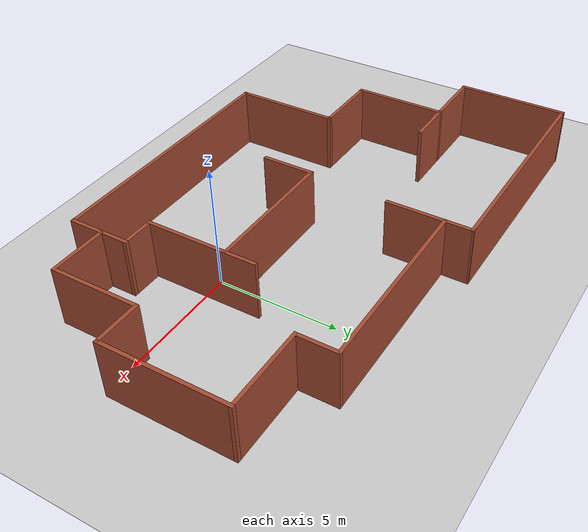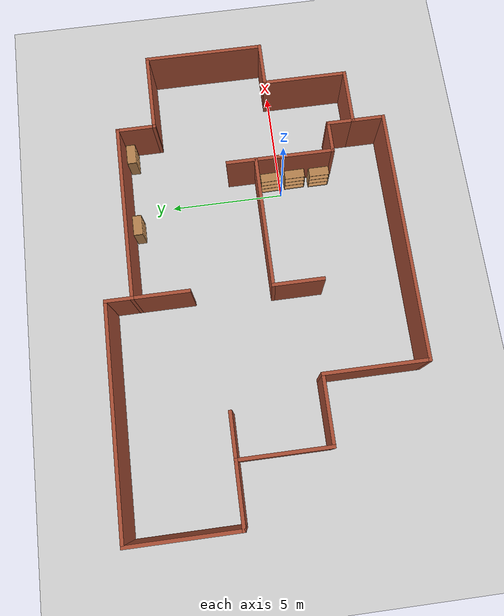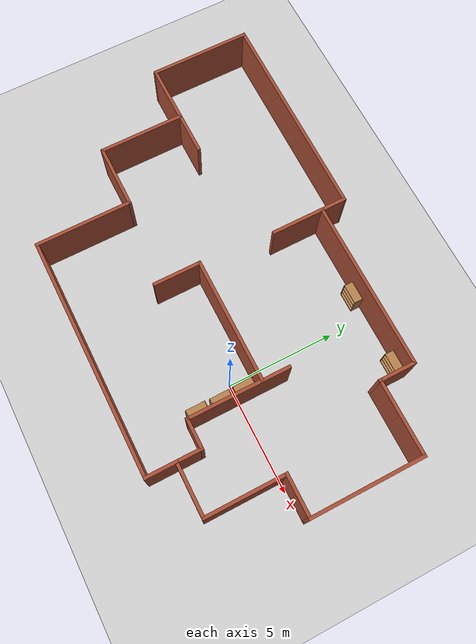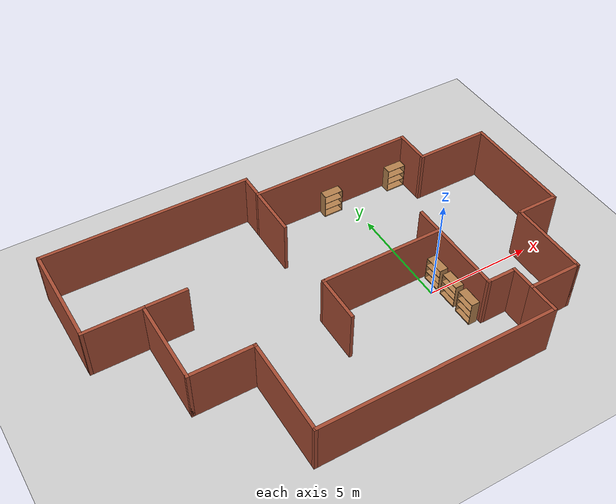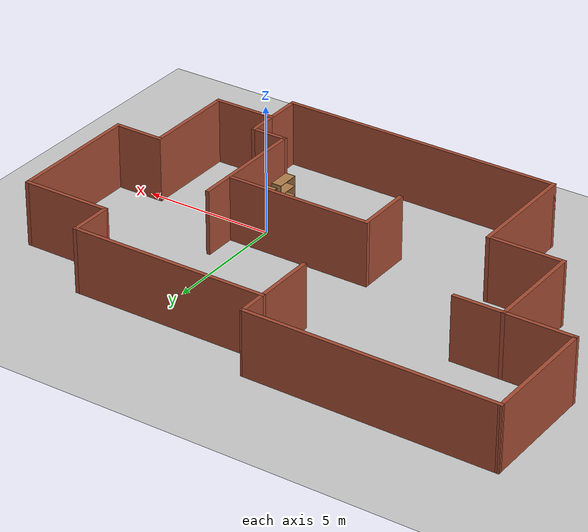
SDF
<sdf version="1.7">
 <world name="default">
  <light name="sun" type="directional">
   <pose>0 0 10 0 -0 0</pose>
   <diffuse>0.8 0.8 0.8 1</diffuse>
   <specular>0.2 0.2 0.2 1</specular>
   <attenuation>
    <range>1000</range>
    <constant>0.9</constant>
    <linear>0.01</linear>
    <quadratic>0.001</quadratic>
   </attenuation>
   <direction>-0.5 0.1 -0.9</direction>
   <spot><inner_angle>0</inner_angle><outer_angle>0</outer_angle><falloff>0</falloff></spot>
  </light>
  <model name="ground_plane">
   <static>1</static>
   <link name="link">
    <collision name="collision">
     <geometry><plane><normal>0 0 1</normal><size>100 100</size></plane></geometry>
     <surface>
      <contact><collide_bitmask>65535</collide_bitmask></contact>
      <friction><ode><mu>100</mu><mu2>50</mu2></ode></friction>
     </surface>
    </collision>
    <visual name="visual">
     <cast_shadows>0</cast_shadows>
     <geometry><plane><normal>0 0 1</normal><size>100 100</size></plane></geometry>
     <material>
      <script><uri>file://media/materials/scripts/gazebo.material</uri><name>Gazebo/Grey</name></script>
     </material>
    </visual>
   </link>
  </model>
  <gravity>0 0 -9.8</gravity>
  <magnetic_field>6e-06 2.3e-05 -4.2e-05</magnetic_field>
  <atmosphere type="adiabatic"/>
  <physics type="ode">
   <max_step_size>0.001</max_step_size>
   <real_time_factor>1</real_time_factor>
   <real_time_update_rate>1000</real_time_update_rate>
  </physics>
  <scene><ambient>0.4 0.4 0.4 1</ambient><background>0.7 0.7 0.7 1</background><shadows>1</shadows></scene>
  <spherical_coordinates>
   <surface_model>EARTH_WGS84</surface_model>
   <latitude_deg>0</latitude_deg>
   <longitude_deg>0</longitude_deg>
   <elevation>0</elevation>
   <heading_deg>0</heading_deg>
  </spherical_coordinates>
  <model name="Untitled">
   <pose>-3.91306 1.61454 0 0 -0 0</pose>
   <link name="Wall_1">
    <collision name="Wall_1_Collision">
     <geometry><box><size>1.5 0.15 2.5</size></box></geometry>
     <pose>0 0 1.25 0 -0 0</pose>
    </collision>
    <visual name="Wall_1_Visual">
     <pose>0 0 1.25 0 -0 0</pose>
     <geometry><box><size>1.5 0.15 2.5</size></box></geometry>
     <material>
      <script><uri>file://media/materials/scripts/gazebo.material</uri><name>Gazebo/Bricks</name></script>
      <ambient>1 1 1 1</ambient>
     </material>
     <meta><layer>0</layer></meta>
    </visual>
    <pose>6.0502 -5.7252 0 0 -0 1.5708</pose>
   </link>
   <link name="Wall_14">
    <collision name="Wall_14_Collision">
     <geometry><box><size>4.75 0.15 2.5</size></box></geometry>
     <pose>0 0 1.25 0 -0 0</pose>
    </collision>
    <visual name="Wall_14_Visual">
     <pose>0 0 1.25 0 -0 0</pose>
     <geometry><box><size>4.75 0.15 2.5</size></box></geometry>
     <material>
      <script><uri>file://media/materials/scripts/gazebo.material</uri><name>Gazebo/Bricks</name></script>
      <ambient>1 1 1 1</ambient>
     </material>
     <meta><layer>0</layer></meta>
    </visual>
    <pose>4.7534 -1.6502 0 0 -0 1.5708</pose>
   </link>
   <link name="Wall_2">
    <collision name="Wall_2_Collision">
     <geometry><box><size>2.5 0.15 2.5</size></box></geometry>
     <pose>0 0 1.25 0 -0 0</pose>
    </collision>
    <visual name="Wall_2_Visual">
     <pose>0 0 1.25 0 -0 0</pose>
     <geometry><box><size>2.5 0.15 2.5</size></box></geometry>
     <material>
      <script><uri>file://media/materials/scripts/gazebo.material</uri><name>Gazebo/Bricks</name></script>
      <ambient>1 1 1 1</ambient>
     </material>
     <meta><layer>0</layer></meta>
    </visual>
    <pose>7.2252 -5.0502 0 0 -0 0</pose>
   </link>
   <link name="Wall_20">
    <collision name="Wall_20_Collision">
     <geometry><box><size>5.25 0.15 2.5</size></box></geometry>
     <pose>0 0 1.25 0 -0 0</pose>
    </collision>
    <visual name="Wall_20_Visual">
     <pose>0 0 1.25 0 -0 0</pose>
     <geometry><box><size>5.25 0.15 2.5</size></box></geometry>
     <material>
      <script><uri>file://media/materials/scripts/gazebo.material</uri><name>Gazebo/Bricks</name></script>
      <ambient>1 1 1 1</ambient>
     </material>
     <meta><layer>0</layer></meta>
    </visual>
    <pose>10.2502 1.0998 0 0 -0 1.5708</pose>
   </link>
   <link name="Wall_21">
    <collision name="Wall_21_Collision">
     <geometry><box><size>3.5 0.15 2.5</size></box></geometry>
     <pose>0 0 1.25 0 -0 0</pose>
    </collision>
    <visual name="Wall_21_Visual">
     <pose>0 0 1.25 0 -0 0</pose>
     <geometry><box><size>3.5 0.15 2.5</size></box></geometry>
     <material>
      <script><uri>file://media/materials/scripts/gazebo.material</uri><name>Gazebo/Bricks</name></script>
      <ambient>1 1 1 1</ambient>
     </material>
     <meta><layer>0</layer></meta>
    </visual>
    <pose>8.5752 3.6498 0 0 -0 3.14159</pose>
   </link>
   <link name="Wall_22">
    <collision name="Wall_22_Collision">
     <geometry><box><size>1.75 0.15 2.5</size></box></geometry>
     <pose>0 0 1.25 0 -0 0</pose>
    </collision>
    <visual name="Wall_22_Visual">
     <pose>0 0 1.25 0 -0 0</pose>
     <geometry><box><size>1.75 0.15 2.5</size></box></geometry>
     <material>
      <script><uri>file://media/materials/scripts/gazebo.material</uri><name>Gazebo/Bricks</name></script>
      <ambient>1 1 1 1</ambient>
     </material>
     <meta><layer>0</layer></meta>
    </visual>
    <pose>6.9002 4.4498 0 0 -0 1.5708</pose>
   </link>
   <link name="Wall_23">
    <collision name="Wall_23_Collision">
     <geometry><box><size>7.75 0.15 2.5</size></box></geometry>
     <pose>0 0 1.25 0 -0 0</pose>
    </collision>
    <visual name="Wall_23_Visual">
     <pose>0 0 1.25 0 -0 0</pose>
     <geometry><box><size>7.75 0.15 2.5</size></box></geometry>
     <material>
      <script><uri>file://media/materials/scripts/gazebo.material</uri><name>Gazebo/Bricks</name></script>
      <ambient>1 1 1 1</ambient>
     </material>
     <meta><layer>0</layer></meta>
    </visual>
    <pose>3.10019 5.2498 0 0 -0 3.14159</pose>
   </link>
   <link name="Wall_25">
    <collision name="Wall_25_Collision">
     <geometry><box><size>1.25 0.15 2.5</size></box></geometry>
     <pose>0 0 1.25 0 -0 0</pose>
    </collision>
    <visual name="Wall_25_Visual">
     <pose>0 0 1.25 0 -0 0</pose>
     <geometry><box><size>1.25 0.15 2.5</size></box></geometry>
     <material>
      <script><uri>file://media/materials/scripts/gazebo.material</uri><name>Gazebo/Bricks</name></script>
      <ambient>1 1 1 1</ambient>
     </material>
     <meta><layer>0</layer></meta>
    </visual>
    <pose>-0.699805 5.7998 0 0 -0 1.5708</pose>
   </link>
   <link name="Wall_3">
    <collision name="Wall_3_Collision">
     <geometry><box><size>3.75 0.15 2.5</size></box></geometry>
     <pose>0 0 1.25 0 -0 0</pose>
    </collision>
    <visual name="Wall_3_Visual">
     <pose>0 0 1.25 0 -0 0</pose>
     <geometry><box><size>3.75 0.15 2.5</size></box></geometry>
     <material>
      <script><uri>file://media/materials/scripts/gazebo.material</uri><name>Gazebo/Bricks</name></script>
      <ambient>1 1 1 1</ambient>
     </material>
     <meta><layer>0</layer></meta>
    </visual>
    <pose>8.4002 -3.2502 0 0 -0 1.5708</pose>
   </link>
   <link name="Wall_30">
    <collision name="Wall_30_Collision">
     <geometry><box><size>11 0.15 2.5</size></box></geometry>
     <pose>0 0 1.25 0 -0 0</pose>
    </collision>
    <visual name="Wall_30_Visual">
     <pose>0 0 1.25 0 -0 0</pose>
     <geometry><box><size>11 0.15 2.5</size></box></geometry>
     <material>
      <script><uri>file://media/materials/scripts/gazebo.material</uri><name>Gazebo/Bricks</name></script>
      <ambient>1 1 1 1</ambient>
     </material>
     <meta><layer>0</layer></meta>
    </visual>
    <pose>0.625196 -6.4002 0 0 -0 3.14159</pose>
   </link>
   <link name="Wall_31">
    <collision name="Wall_31_Collision">
     <geometry><box><size>4.5 0.15 2.5</size></box></geometry>
     <pose>0 0 1.25 0 -0 0</pose>
    </collision>
    <visual name="Wall_31_Visual">
     <pose>0 0 1.25 0 -0 0</pose>
     <geometry><box><size>4.5 0.15 2.5</size></box></geometry>
     <material>
      <script><uri>file://media/materials/scripts/gazebo.material</uri><name>Gazebo/Bricks</name></script>
      <ambient>1 1 1 1</ambient>
     </material>
     <meta><layer>0</layer></meta>
    </visual>
    <pose>-4.79981 -4.2252 0 0 -0 1.5708</pose>
   </link>
   <link name="Wall_34">
    <collision name="Wall_34_Collision">
     <geometry><box><size>5.75 0.15 2.5</size></box></geometry>
     <pose>0 0 1.25 0 -0 0</pose>
    </collision>
    <visual name="Wall_34_Visual">
     <pose>0 0 1.25 0 -0 0</pose>
     <geometry><box><size>5.75 0.15 2.5</size></box></geometry>
     <material>
      <script><uri>file://media/materials/scripts/gazebo.material</uri><name>Gazebo/Bricks</name></script>
      <ambient>1 1 1 1</ambient>
     </material>
     <meta><layer>0</layer></meta>
    </visual>
    <pose>1.89128 -0.576477 0 0 -0 3.14159</pose>
   </link>
   <link name="Wall_35">
    <collision name="Wall_35_Collision">
     <geometry><box><size>2.25 0.15 2.5</size></box></geometry>
     <pose>0 0 1.25 0 -0 0</pose>
    </collision>
    <visual name="Wall_35_Visual">
     <pose>0 0 1.25 0 -0 0</pose>
     <geometry><box><size>2.25 0.15 2.5</size></box></geometry>
     <material>
      <script><uri>file://media/materials/scripts/gazebo.material</uri><name>Gazebo/Bricks</name></script>
      <ambient>1 1 1 1</ambient>
     </material>
     <meta><layer>0</layer></meta>
    </visual>
    <pose>-0.908717 -1.62648 0 0 -0 -1.5708</pose>
   </link>
   <link name="Wall_37">
    <collision name="Wall_37_Collision">
     <geometry><box><size>3 0.15 2.5</size></box></geometry>
     <pose>0 0 1.25 0 -0 0</pose>
    </collision>
    <visual name="Wall_37_Visual">
     <pose>0 0 1.25 0 -0 0</pose>
     <geometry><box><size>3 0.15 2.5</size></box></geometry>
     <material>
      <script><uri>file://media/materials/scripts/gazebo.material</uri><name>Gazebo/Bricks</name></script>
      <ambient>1 1 1 1</ambient>
     </material>
     <meta><layer>0</layer></meta>
    </visual>
    <pose>-6.2248 -2.0502 0 0 -0 3.14159</pose>
   </link>
   <link name="Wall_38">
    <collision name="Wall_38_Collision">
     <geometry><box><size>4 0.15 2.5</size></box></geometry>
     <pose>0 0 1.25 0 -0 0</pose>
    </collision>
    <visual name="Wall_38_Visual">
     <pose>0 0 1.25 0 -0 0</pose>
     <geometry><box><size>4 0.15 2.5</size></box></geometry>
     <material>
      <script><uri>file://media/materials/scripts/gazebo.material</uri><name>Gazebo/Bricks</name></script>
      <ambient>1 1 1 1</ambient>
     </material>
     <meta><layer>0</layer></meta>
    </visual>
    <pose>-7.6498 -0.125196 0 0 -0 1.5708</pose>
   </link>
   <link name="Wall_39">
    <collision name="Wall_39_Collision">
     <geometry><box><size>2 0.15 2.5</size></box></geometry>
     <pose>0 0 1.25 0 -0 0</pose>
    </collision>
    <visual name="Wall_39_Visual">
     <pose>0 0 1.25 0 -0 0</pose>
     <geometry><box><size>2 0.15 2.5</size></box></geometry>
     <material>
      <script><uri>file://media/materials/scripts/gazebo.material</uri><name>Gazebo/Bricks</name></script>
      <ambient>1 1 1 1</ambient>
     </material>
     <meta><layer>0</layer></meta>
    </visual>
    <pose>-6.7248 1.7998 0 0 -0 0</pose>
   </link>
   <link name="Wall_4">
    <collision name="Wall_4_Collision">
     <geometry><box><size>2 0.15 2.5</size></box></geometry>
     <pose>0 0 1.25 0 -0 0</pose>
    </collision>
    <visual name="Wall_4_Visual">
     <pose>0 0 1.25 0 -0 0</pose>
     <geometry><box><size>2 0.15 2.5</size></box></geometry>
     <material>
      <script><uri>file://media/materials/scripts/gazebo.material</uri><name>Gazebo/Bricks</name></script>
      <ambient>1 1 1 1</ambient>
     </material>
     <meta><layer>0</layer></meta>
    </visual>
    <pose>9.3252 -1.4502 0 0 -0 0</pose>
   </link>
   <link name="Wall_47">
    <collision name="Wall_47_Collision">
     <geometry><box><size>2.75 0.15 2.5</size></box></geometry>
     <pose>0 0 1.25 0 -0 0</pose>
    </collision>
    <visual name="Wall_47_Visual">
     <pose>0 0 1.25 0 -0 0</pose>
     <geometry><box><size>2.75 0.15 2.5</size></box></geometry>
     <material>
      <script><uri>file://media/materials/scripts/gazebo.material</uri><name>Gazebo/Bricks</name></script>
      <ambient>1 1 1 1</ambient>
     </material>
     <meta><layer>0</layer></meta>
    </visual>
    <pose>-8.9498 1.7998 0 0 -0 3.14159</pose>
   </link>
   <link name="Wall_48">
    <collision name="Wall_48_Collision">
     <geometry><box><size>4.75 0.15 2.5</size></box></geometry>
     <pose>0 0 1.25 0 -0 0</pose>
    </collision>
    <visual name="Wall_48_Visual">
     <pose>0 0 1.25 0 -0 0</pose>
     <geometry><box><size>4.75 0.15 2.5</size></box></geometry>
     <material>
      <script><uri>file://media/materials/scripts/gazebo.material</uri><name>Gazebo/Bricks</name></script>
      <ambient>1 1 1 1</ambient>
     </material>
     <meta><layer>0</layer></meta>
    </visual>
    <pose>-10.2498 4.0998 0 0 -0 1.5708</pose>
   </link>
   <link name="Wall_49">
    <collision name="Wall_49_Collision">
     <geometry><box><size>9.70013 0.15 2.5</size></box></geometry>
     <pose>0 0 1.25 0 -0 0</pose>
    </collision>
    <visual name="Wall_49_Visual">
     <pose>0 0 1.25 0 -0 0</pose>
     <geometry><box><size>9.70013 0.15 2.5</size></box></geometry>
     <material>
      <script><uri>file://media/materials/scripts/gazebo.material</uri><name>Gazebo/Bricks</name></script>
      <ambient>1 1 1 1</ambient>
     </material>
     <meta><layer>0</layer></meta>
    </visual>
    <pose>-5.4748 6.3748 0 0 -0 -0.005236</pose>
   </link>
   <link name="Wall_51">
    <collision name="Wall_51_Collision">
     <geometry><box><size>2.5 0.15 2.5</size></box></geometry>
     <pose>0 0 1.25 0 -0 0</pose>
    </collision>
    <visual name="Wall_51_Visual">
     <pose>0 0 1.25 0 -0 0</pose>
     <geometry><box><size>2.5 0.15 2.5</size></box></geometry>
     <material>
      <script><uri>file://media/materials/scripts/gazebo.material</uri><name>Gazebo/Bricks</name></script>
      <ambient>1 1 1 1</ambient>
     </material>
     <meta><layer>0</layer></meta>
    </visual>
    <pose>-0.699805 4.0748 0 0 -0 -1.5708</pose>
   </link>
   <link name="Wall_7">
    <collision name="Wall_7_Collision">
     <geometry><box><size>1.25 0.15 2.5</size></box></geometry>
     <pose>0 0 1.25 0 -0 0</pose>
    </collision>
    <visual name="Wall_7_Visual">
     <pose>0 0 1.25 0 -0 0</pose>
     <geometry><box><size>1.25 0.15 2.5</size></box></geometry>
     <material>
      <script><uri>file://media/materials/scripts/gazebo.material</uri><name>Gazebo/Bricks</name></script>
      <ambient>1 1 1 1</ambient>
     </material>
     <meta><layer>0</layer></meta>
    </visual>
    <pose>6.0502 -4.5002 0 0 -0 1.5708</pose>
   </link>
   <link name="Wall_8">
    <collision name="Wall_8_Collision">
     <geometry><box><size>1.4468 0.15 2.5</size></box></geometry>
     <pose>0 0 1.25 0 -0 0</pose>
    </collision>
    <visual name="Wall_8_Visual">
     <pose>0 0 1.25 0 -0 0</pose>
     <geometry><box><size>1.4468 0.15 2.5</size></box></geometry>
     <material>
      <script><uri>file://media/materials/scripts/gazebo.material</uri><name>Gazebo/Bricks</name></script>
      <ambient>1 1 1 1</ambient>
     </material>
     <meta><layer>0</layer></meta>
    </visual>
    <pose>5.4018 -3.9502 0 0 -0 3.14159</pose>
   </link>
   <static>1</static>
  </model>
  <model name="bookshelf">
   <static>1</static>
   <link name="link">
    <inertial><mass>1</mass></inertial>
    <collision name="back">
     <pose>0 0.005 0.6 0 -0 0</pose>
     <geometry><box><size>0.9 0.01 1.2</size></box></geometry>
    </collision>
    <visual name="visual1">
     <pose>0 0.005 0.6 0 -0 0</pose>
     <geometry><box><size>0.9 0.01 1.2</size></box></geometry>
     <material>
      <script><uri>file://media/materials/scripts/gazebo.material</uri><name>Gazebo/Wood</name></script>
     </material>
    </visual>
    <collision name="left_side">
     <pose>0.45 -0.195 0.6 0 -0 0</pose>
     <geometry><box><size>0.02 0.4 1.2</size></box></geometry>
    </collision>
    <visual name="visual2">
     <pose>0.45 -0.195 0.6 0 -0 0</pose>
     <geometry><box><size>0.02 0.4 1.2</size></box></geometry>
     <material>
      <script><uri>file://media/materials/scripts/gazebo.material</uri><name>Gazebo/Wood</name></script>
     </material>
    </visual>
    <collision name="right_side">
     <pose>-0.45 -0.195 0.6 0 -0 0</pose>
     <geometry><box><size>0.02 0.4 1.2</size></box></geometry>
    </collision>
    <visual name="visual3">
     <pose>-0.45 -0.195 0.6 0 -0 0</pose>
     <geometry><box><size>0.02 0.4 1.2</size></box></geometry>
     <material>
      <script><uri>file://media/materials/scripts/gazebo.material</uri><name>Gazebo/Wood</name></script>
     </material>
    </visual>
    <collision name="bottom">
     <pose>0 -0.195 0.03 0 -0 0</pose>
     <geometry><box><size>0.88 0.4 0.06</size></box></geometry>
    </collision>
    <visual name="visual4">
     <pose>0 -0.195 0.03 0 -0 0</pose>
     <geometry><box><size>0.88 0.4 0.06</size></box></geometry>
     <material>
      <script><uri>file://media/materials/scripts/gazebo.material</uri><name>Gazebo/Wood</name></script>
     </material>
    </visual>
    <collision name="top">
     <pose>0 -0.195 1.19 0 -0 0</pose>
     <geometry><box><size>0.88 0.4 0.02</size></box></geometry>
    </collision>
    <visual name="visual5">
     <pose>0 -0.195 1.19 0 -0 0</pose>
     <geometry><box><size>0.88 0.4 0.02</size></box></geometry>
     <material>
      <script><uri>file://media/materials/scripts/gazebo.material</uri><name>Gazebo/Wood</name></script>
     </material>
    </visual>
    <collision name="low_shelf">
     <pose>0 -0.195 0.43 0 -0 0</pose>
     <geometry><box><size>0.88 0.4 0.02</size></box></geometry>
    </collision>
    <visual name="visual6">
     <pose>0 -0.195 0.43 0 -0 0</pose>
     <geometry><box><size>0.88 0.4 0.02</size></box></geometry>
     <material>
      <script><uri>file://media/materials/scripts/gazebo.material</uri><name>Gazebo/Wood</name></script>
     </material>
    </visual>
    <collision name="high_shelf">
     <pose>0 -0.195 0.8 0 -0 0</pose>
     <geometry><box><size>0.88 0.4 0.02</size></box></geometry>
    </collision>
    <visual name="visual7">
     <pose>0 -0.195 0.8 0 -0 0</pose>
     <geometry><box><size>0.88 0.4 0.02</size></box></geometry>
     <material>
      <script><uri>file://media/materials/scripts/gazebo.material</uri><name>Gazebo/Wood</name></script>
     </material>
    </visual>
   </link>
   <pose>2.42801 6.74392 0 0 -0 0</pose>
  </model>
  <model name="bookshelf_0">
   <static>1</static>
   <link name="link">
    <inertial><mass>1</mass></inertial>
    <collision name="back">
     <pose>0 0.005 0.6 0 -0 0</pose>
     <geometry><box><size>0.9 0.01 1.2</size></box></geometry>
    </collision>
    <visual name="visual1">
     <pose>0 0.005 0.6 0 -0 0</pose>
     <geometry><box><size>0.9 0.01 1.2</size></box></geometry>
     <material>
      <script><uri>file://media/materials/scripts/gazebo.material</uri><name>Gazebo/Wood</name></script>
     </material>
    </visual>
    <collision name="left_side">
     <pose>0.45 -0.195 0.6 0 -0 0</pose>
     <geometry><box><size>0.02 0.4 1.2</size></box></geometry>
    </collision>
    <visual name="visual2">
     <pose>0.45 -0.195 0.6 0 -0 0</pose>
     <geometry><box><size>0.02 0.4 1.2</size></box></geometry>
     <material>
      <script><uri>file://media/materials/scripts/gazebo.material</uri><name>Gazebo/Wood</name></script>
     </material>
    </visual>
    <collision name="right_side">
     <pose>-0.45 -0.195 0.6 0 -0 0</pose>
     <geometry><box><size>0.02 0.4 1.2</size></box></geometry>
    </collision>
    <visual name="visual3">
     <pose>-0.45 -0.195 0.6 0 -0 0</pose>
     <geometry><box><size>0.02 0.4 1.2</size></box></geometry>
     <material>
      <script><uri>file://media/materials/scripts/gazebo.material</uri><name>Gazebo/Wood</name></script>
     </material>
    </visual>
    <collision name="bottom">
     <pose>0 -0.195 0.03 0 -0 0</pose>
     <geometry><box><size>0.88 0.4 0.06</size></box></geometry>
    </collision>
    <visual name="visual4">
     <pose>0 -0.195 0.03 0 -0 0</pose>
     <geometry><box><size>0.88 0.4 0.06</size></box></geometry>
     <material>
      <script><uri>file://media/materials/scripts/gazebo.material</uri><name>Gazebo/Wood</name></script>
     </material>
    </visual>
    <collision name="top">
     <pose>0 -0.195 1.19 0 -0 0</pose>
     <geometry><box><size>0.88 0.4 0.02</size></box></geometry>
    </collision>
    <visual name="visual5">
     <pose>0 -0.195 1.19 0 -0 0</pose>
     <geometry><box><size>0.88 0.4 0.02</size></box></geometry>
     <material>
      <script><uri>file://media/materials/scripts/gazebo.material</uri><name>Gazebo/Wood</name></script>
     </material>
    </visual>
    <collision name="low_shelf">
     <pose>0 -0.195 0.43 0 -0 0</pose>
     <geometry><box><size>0.88 0.4 0.02</size></box></geometry>
    </collision>
    <visual name="visual6">
     <pose>0 -0.195 0.43 0 -0 0</pose>
     <geometry><box><size>0.88 0.4 0.02</size></box></geometry>
     <material>
      <script><uri>file://media/materials/scripts/gazebo.material</uri><name>Gazebo/Wood</name></script>
     </material>
    </visual>
    <collision name="high_shelf">
     <pose>0 -0.195 0.8 0 -0 0</pose>
     <geometry><box><size>0.88 0.4 0.02</size></box></geometry>
    </collision>
    <visual name="visual7">
     <pose>0 -0.195 0.8 0 -0 0</pose>
     <geometry><box><size>0.88 0.4 0.02</size></box></geometry>
     <material>
      <script><uri>file://media/materials/scripts/gazebo.material</uri><name>Gazebo/Wood</name></script>
     </material>
    </visual>
   </link>
   <pose>-1.00632 6.74657 0 0 -0 0</pose>
  </model>
  <model name="bookshelf_clone">
   <static>1</static>
   <link name="link">
    <inertial><mass>1</mass></inertial>
    <collision name="back">
     <pose>0 0.005 0.6 0 -0 0</pose>
     <geometry><box><size>0.9 0.01 1.2</size></box></geometry>
    </collision>
    <visual name="visual1">
     <pose>0 0.005 0.6 0 -0 0</pose>
     <geometry><box><size>0.9 0.01 1.2</size></box></geometry>
     <material>
      <script><uri>file://media/materials/scripts/gazebo.material</uri><name>Gazebo/Wood</name></script>
     </material>
    </visual>
    <collision name="left_side">
     <pose>0.45 -0.195 0.6 0 -0 0</pose>
     <geometry><box><size>0.02 0.4 1.2</size></box></geometry>
    </collision>
    <visual name="visual2">
     <pose>0.45 -0.195 0.6 0 -0 0</pose>
     <geometry><box><size>0.02 0.4 1.2</size></box></geometry>
     <material>
      <script><uri>file://media/materials/scripts/gazebo.material</uri><name>Gazebo/Wood</name></script>
     </material>
    </visual>
    <collision name="right_side">
     <pose>-0.45 -0.195 0.6 0 -0 0</pose>
     <geometry><box><size>0.02 0.4 1.2</size></box></geometry>
    </collision>
    <visual name="visual3">
     <pose>-0.45 -0.195 0.6 0 -0 0</pose>
     <geometry><box><size>0.02 0.4 1.2</size></box></geometry>
     <material>
      <script><uri>file://media/materials/scripts/gazebo.material</uri><name>Gazebo/Wood</name></script>
     </material>
    </visual>
    <collision name="bottom">
     <pose>0 -0.195 0.03 0 -0 0</pose>
     <geometry><box><size>0.88 0.4 0.06</size></box></geometry>
    </collision>
    <visual name="visual4">
     <pose>0 -0.195 0.03 0 -0 0</pose>
     <geometry><box><size>0.88 0.4 0.06</size></box></geometry>
     <material>
      <script><uri>file://media/materials/scripts/gazebo.material</uri><name>Gazebo/Wood</name></script>
     </material>
    </visual>
    <collision name="top">
     <pose>0 -0.195 1.19 0 -0 0</pose>
     <geometry><box><size>0.88 0.4 0.02</size></box></geometry>
    </collision>
    <visual name="visual5">
     <pose>0 -0.195 1.19 0 -0 0</pose>
     <geometry><box><size>0.88 0.4 0.02</size></box></geometry>
     <material>
      <script><uri>file://media/materials/scripts/gazebo.material</uri><name>Gazebo/Wood</name></script>
     </material>
    </visual>
    <collision name="low_shelf">
     <pose>0 -0.195 0.43 0 -0 0</pose>
     <geometry><box><size>0.88 0.4 0.02</size></box></geometry>
    </collision>
    <visual name="visual6">
     <pose>0 -0.195 0.43 0 -0 0</pose>
     <geometry><box><size>0.88 0.4 0.02</size></box></geometry>
     <material>
      <script><uri>file://media/materials/scripts/gazebo.material</uri><name>Gazebo/Wood</name></script>
     </material>
    </visual>
    <collision name="high_shelf">
     <pose>0 -0.195 0.8 0 -0 0</pose>
     <geometry><box><size>0.88 0.4 0.02</size></box></geometry>
    </collision>
    <visual name="visual7">
     <pose>0 -0.195 0.8 0 -0 0</pose>
     <geometry><box><size>0.88 0.4 0.02</size></box></geometry>
     <material>
      <script><uri>file://media/materials/scripts/gazebo.material</uri><name>Gazebo/Wood</name></script>
     </material>
    </visual>
   </link>
   <pose>0.677831 0.436595 0 0 0 -1.54792</pose>
  </model>
  <model name="bookshelf_clone_0">
   <static>1</static>
   <link name="link">
    <inertial><mass>1</mass></inertial>
    <collision name="back">
     <pose>0 0.005 0.6 0 -0 0</pose>
     <geometry><box><size>0.9 0.01 1.2</size></box></geometry>
    </collision>
    <visual name="visual1">
     <pose>0 0.005 0.6 0 -0 0</pose>
     <geometry><box><size>0.9 0.01 1.2</size></box></geometry>
     <material>
      <script><uri>file://media/materials/scripts/gazebo.material</uri><name>Gazebo/Wood</name></script>
     </material>
    </visual>
    <collision name="left_side">
     <pose>0.45 -0.195 0.6 0 -0 0</pose>
     <geometry><box><size>0.02 0.4 1.2</size></box></geometry>
    </collision>
    <visual name="visual2">
     <pose>0.45 -0.195 0.6 0 -0 0</pose>
     <geometry><box><size>0.02 0.4 1.2</size></box></geometry>
     <material>
      <script><uri>file://media/materials/scripts/gazebo.material</uri><name>Gazebo/Wood</name></script>
     </material>
    </visual>
    <collision name="right_side">
     <pose>-0.45 -0.195 0.6 0 -0 0</pose>
     <geometry><box><size>0.02 0.4 1.2</size></box></geometry>
    </collision>
    <visual name="visual3">
     <pose>-0.45 -0.195 0.6 0 -0 0</pose>
     <geometry><box><size>0.02 0.4 1.2</size></box></geometry>
     <material>
      <script><uri>file://media/materials/scripts/gazebo.material</uri><name>Gazebo/Wood</name></script>
     </material>
    </visual>
    <collision name="bottom">
     <pose>0 -0.195 0.03 0 -0 0</pose>
     <geometry><box><size>0.88 0.4 0.06</size></box></geometry>
    </collision>
    <visual name="visual4">
     <pose>0 -0.195 0.03 0 -0 0</pose>
     <geometry><box><size>0.88 0.4 0.06</size></box></geometry>
     <material>
      <script><uri>file://media/materials/scripts/gazebo.material</uri><name>Gazebo/Wood</name></script>
     </material>
    </visual>
    <collision name="top">
     <pose>0 -0.195 1.19 0 -0 0</pose>
     <geometry><box><size>0.88 0.4 0.02</size></box></geometry>
    </collision>
    <visual name="visual5">
     <pose>0 -0.195 1.19 0 -0 0</pose>
     <geometry><box><size>0.88 0.4 0.02</size></box></geometry>
     <material>
      <script><uri>file://media/materials/scripts/gazebo.material</uri><name>Gazebo/Wood</name></script>
     </material>
    </visual>
    <collision name="low_shelf">
     <pose>0 -0.195 0.43 0 -0 0</pose>
     <geometry><box><size>0.88 0.4 0.02</size></box></geometry>
    </collision>
    <visual name="visual6">
     <pose>0 -0.195 0.43 0 -0 0</pose>
     <geometry><box><size>0.88 0.4 0.02</size></box></geometry>
     <material>
      <script><uri>file://media/materials/scripts/gazebo.material</uri><name>Gazebo/Wood</name></script>
     </material>
    </visual>
    <collision name="high_shelf">
     <pose>0 -0.195 0.8 0 -0 0</pose>
     <geometry><box><size>0.88 0.4 0.02</size></box></geometry>
    </collision>
    <visual name="visual7">
     <pose>0 -0.195 0.8 0 -0 0</pose>
     <geometry><box><size>0.88 0.4 0.02</size></box></geometry>
     <material>
      <script><uri>file://media/materials/scripts/gazebo.material</uri><name>Gazebo/Wood</name></script>
     </material>
    </visual>
   </link>
   <pose>0.69692 -0.650232 0 0 0 -1.55849</pose>
  </model>
  <model name="bookshelf_clone_1">
   <static>1</static>
   <link name="link">
    <inertial><mass>1</mass></inertial>
    <collision name="back">
     <pose>0 0.005 0.6 0 -0 0</pose>
     <geometry><box><size>0.9 0.01 1.2</size></box></geometry>
    </collision>
    <visual name="visual1">
     <pose>0 0.005 0.6 0 -0 0</pose>
     <geometry><box><size>0.9 0.01 1.2</size></box></geometry>
     <material>
      <script><uri>file://media/materials/scripts/gazebo.material</uri><name>Gazebo/Wood</name></script>
     </material>
    </visual>
    <collision name="left_side">
     <pose>0.45 -0.195 0.6 0 -0 0</pose>
     <geometry><box><size>0.02 0.4 1.2</size></box></geometry>
    </collision>
    <visual name="visual2">
     <pose>0.45 -0.195 0.6 0 -0 0</pose>
     <geometry><box><size>0.02 0.4 1.2</size></box></geometry>
     <material>
      <script><uri>file://media/materials/scripts/gazebo.material</uri><name>Gazebo/Wood</name></script>
     </material>
    </visual>
    <collision name="right_side">
     <pose>-0.45 -0.195 0.6 0 -0 0</pose>
     <geometry><box><size>0.02 0.4 1.2</size></box></geometry>
    </collision>
    <visual name="visual3">
     <pose>-0.45 -0.195 0.6 0 -0 0</pose>
     <geometry><box><size>0.02 0.4 1.2</size></box></geometry>
     <material>
      <script><uri>file://media/materials/scripts/gazebo.material</uri><name>Gazebo/Wood</name></script>
     </material>
    </visual>
    <collision name="bottom">
     <pose>0 -0.195 0.03 0 -0 0</pose>
     <geometry><box><size>0.88 0.4 0.06</size></box></geometry>
    </collision>
    <visual name="visual4">
     <pose>0 -0.195 0.03 0 -0 0</pose>
     <geometry><box><size>0.88 0.4 0.06</size></box></geometry>
     <material>
      <script><uri>file://media/materials/scripts/gazebo.material</uri><name>Gazebo/Wood</name></script>
     </material>
    </visual>
    <collision name="top">
     <pose>0 -0.195 1.19 0 -0 0</pose>
     <geometry><box><size>0.88 0.4 0.02</size></box></geometry>
    </collision>
    <visual name="visual5">
     <pose>0 -0.195 1.19 0 -0 0</pose>
     <geometry><box><size>0.88 0.4 0.02</size></box></geometry>
     <material>
      <script><uri>file://media/materials/scripts/gazebo.material</uri><name>Gazebo/Wood</name></script>
     </material>
    </visual>
    <collision name="low_shelf">
     <pose>0 -0.195 0.43 0 -0 0</pose>
     <geometry><box><size>0.88 0.4 0.02</size></box></geometry>
    </collision>
    <visual name="visual6">
     <pose>0 -0.195 0.43 0 -0 0</pose>
     <geometry><box><size>0.88 0.4 0.02</size></box></geometry>
     <material>
      <script><uri>file://media/materials/scripts/gazebo.material</uri><name>Gazebo/Wood</name></script>
     </material>
    </visual>
    <collision name="high_shelf">
     <pose>0 -0.195 0.8 0 -0 0</pose>
     <geometry><box><size>0.88 0.4 0.02</size></box></geometry>
    </collision>
    <visual name="visual7">
     <pose>0 -0.195 0.8 0 -0 0</pose>
     <geometry><box><size>0.88 0.4 0.02</size></box></geometry>
     <material>
      <script><uri>file://media/materials/scripts/gazebo.material</uri><name>Gazebo/Wood</name></script>
     </material>
    </visual>
   </link>
   <pose>0.676756 -1.76032 0 0 0 -1.56751</pose>
  </model>
 </world>
</sdf>
